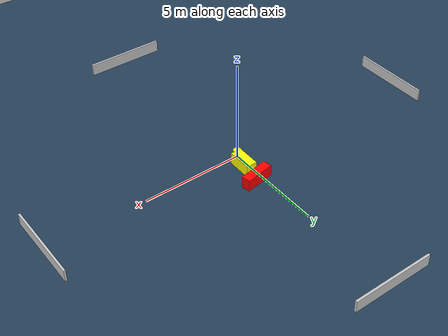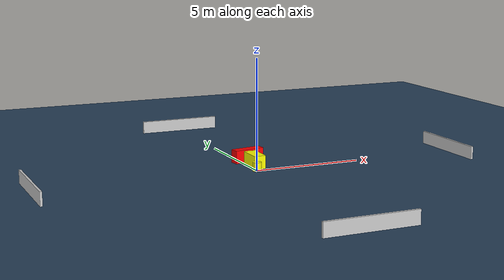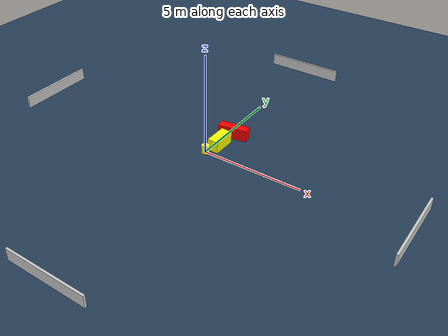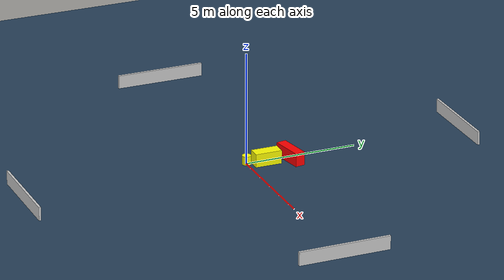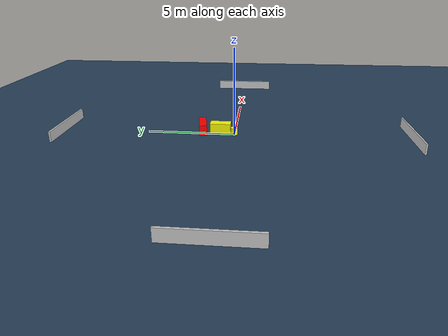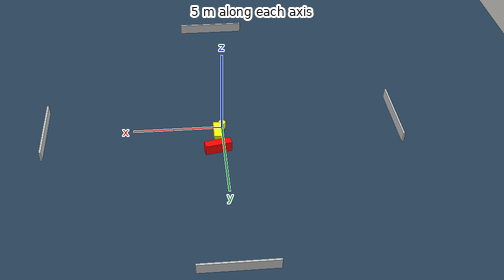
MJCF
<?xml version="1.0" ?>
<mujoco model="generated_environment">
  <option timestep="0.01" integrator="RK4" cone="elliptic"/>
  <default>
    <geom density="1"/>
  </default>
  <asset>
    <texture builtin="gradient" height="3072" name="skybox" rgb1="0.3 0.5 0.7" rgb2="0 0 0" type="skybox" width="512"/>
    <texture builtin="checker" height="300" name="groundplane" rgb1="0.2 0.3 0.4" rgb2="0.1 0.2 0.3" type="2d" width="300"/>
    <material name="groundplane" reflectance="0.2" texrepeat="5 5" texture="groundplane"/>
  </asset>
  <worldbody>
    <light dir="0 0 -1" directional="true" pos="0 0 1.5"/>
    <geom condim="3" friction="0.5 0.005 0.001" material="groundplane" name="floor" pos="0 0 0" size="0 0 0.05" type="plane"/>
    <body name="walls">
      <geom name="wall_1" condim="4" pos="-10.0 0.0 0.3" rgba="0.800000011920929 0.800000011920929 0.800000011920929 1.0" size="0.05 2.0 0.3" type="box"/>
      <geom name="wall_2" condim="4" pos="10.0 0.0 0.3" rgba="0.800000011920929 0.800000011920929 0.800000011920929 1.0" size="0.05 2.0 0.3" type="box"/>
      <geom name="wall_3" condim="4" pos="0.0 -10.0 0.3" rgba="0.800000011920929 0.800000011920929 0.800000011920929 1.0" size="2.0 0.05 0.3" type="box"/>
      <geom name="wall_4" condim="4" pos="0.0 10.0 0.3" rgba="0.800000011920929 0.800000011920929 0.800000011920929 1.0" size="2.0 0.05 0.3" type="box"/>
    </body>
    <body name="robot">
      <joint name="joint_x" type="slide" pos="0 0 0" axis="1 0 0"/>
      <joint name="joint_y" type="slide" pos="0 0 0" axis="0 1 0"/>
      <geom name="robot" type="cylinder" pos="0.0 0.0 0.2" size="0.2 0.2 0.0" mass="5.0" friction="1.0 0.005 0.0001" condim="4" rgba="1.0 1.0 0.0 1.0"/>
    </body>
    <body name="obstacle_1_movable">
      <geom name="obstacle_1_movable" condim="4" pos="0.254239086106067 0.8104710047056938 0.3" euler="0 0 359.4506706089394" friction="0.0 0.005 0.001" rgba="1.0 1.0 0.0 1.0" size="0.2729555213232799 0.5922843826501138 0.3" type="box" mass="0.1"/>
      <joint type="free"/>
    </body>
    <body name="obstacle_2_static">
      <geom name="obstacle_2_static" condim="4" pos="0.3585275097129732 1.8856525272014466 0.3" euler="0 0 190.21658604688912" friction="0.0 0.005 0.001" rgba="1.0 0.0 0.0 1.0" size="0.7324390256689561 0.21948653665383921 0.3" type="box"/>
    </body>
  </worldbody>
  <actuator>
    <motor name="actuator_x" joint="joint_x" gear="1" ctrlrange="-1 1"/>
    <motor name="actuator_y" joint="joint_y" gear="1" ctrlrange="-1 1"/>
  </actuator>
</mujoco>
